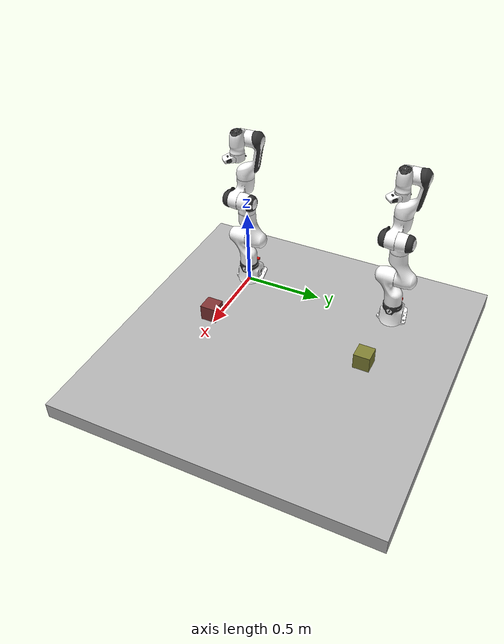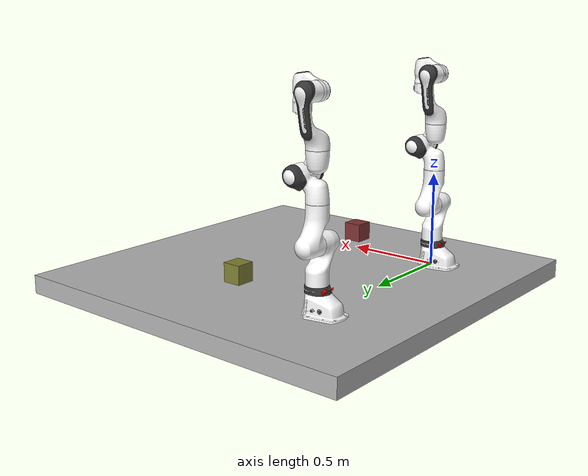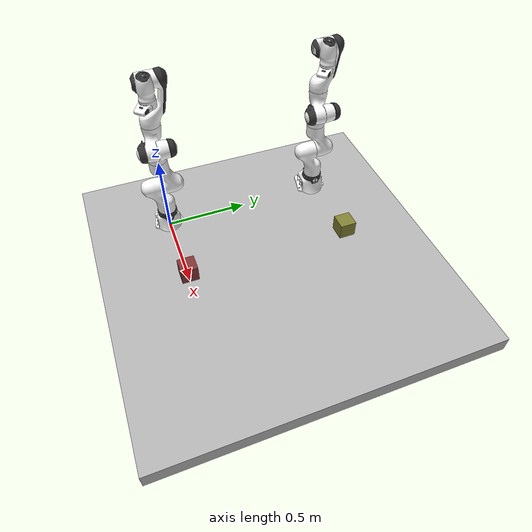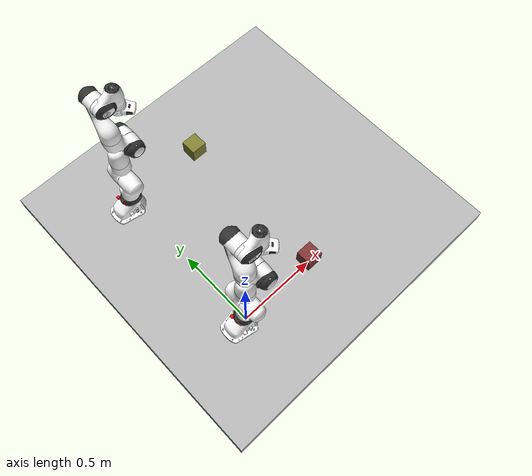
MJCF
<mujoco model="dual_fr3_scene">
  <compiler angle="radian" meshdir="assets"/>

  <option integrator="implicitfast"/>

  <default>
    <default class="fr3">
      <!-- Overwritten in joints 5, 6, and 7. -->
      <joint damping="0.21" armature="0.195" frictionloss="1.137"/>
      <position inheritrange="1"/>
      <default class="visual">
        <geom type="mesh" group="2" contype="0" conaffinity="0"/>
      </default>
      <default class="collision">
        <geom type="mesh" group="3" mass="0" density="0"/>
      </default>
      <site size="0.001" rgba="0.5 0.5 0.5 0.3" group="4"/>
    </default>
  </default>

  <asset>
    <material name="black" rgba=".2 .2 .2 1"/>
    <material name="white" rgba="1 1 1 1"/>
    <material name="red" rgba="1 0.072272 0.039546 1"/>
    <material name="gray" rgba="0.863156 0.863156 0.863157 1"/>
    <material name="button_green" rgba="0.102241 0.571125 0.102242 1"/>
    <material name="button_red" rgba="0.520996 0.008023 0.013702 1"/>
    <material name="button_blue" rgba="0.024157 0.445201 0.737911 1"/>

    <mesh file="link0_0.obj"/>
    <mesh file="link0_1.obj"/>
    <mesh file="link0_2.obj"/>
    <mesh file="link0_3.obj"/>
    <mesh file="link0_4.obj"/>
    <mesh file="link0_5.obj"/>
    <mesh file="link0_6.obj"/>
    <mesh file="link1.obj"/>
    <mesh file="link2.obj"/>
    <mesh file="link3_0.obj"/>
    <mesh file="link3_1.obj"/>
    <mesh file="link4_0.obj"/>
    <mesh file="link4_1.obj"/>
    <mesh file="link5_0.obj"/>
    <mesh file="link5_1.obj"/>
    <mesh file="link5_2.obj"/>
    <mesh file="link6_0.obj"/>
    <mesh file="link6_1.obj"/>
    <mesh file="link6_2.obj"/>
    <mesh file="link6_3.obj"/>
    <mesh file="link6_4.obj"/>
    <mesh file="link6_5.obj"/>
    <mesh file="link6_6.obj"/>
    <mesh file="link6_7.obj"/>
    <mesh file="link7_0.obj"/>
    <mesh file="link7_1.obj"/>
    <mesh file="link7_2.obj"/>
    <mesh file="link7_3.obj"/>

    <mesh name="link0_coll" file="link0.stl"/>
    <mesh name="link1_coll" file="link1.stl"/>
    <mesh name="link2_coll" file="link2.stl"/>
    <mesh name="link3_coll" file="link3.stl"/>
    <mesh name="link4_coll" file="link4.stl"/>
    <mesh name="link5_coll" file="link5.stl"/>
    <mesh name="link6_coll" file="link6.stl"/>
    <mesh name="link7_coll" file="link7.stl"/>
  </asset>

  <worldbody>
    <!-- First FR3 Robot (renamed) -->

    <body name="base_robot1" childclass="fr3">
      <body name="fr3_link0_robot1">
        <geom mesh="link0_0" material="black" class="visual"/>
        <geom mesh="link0_1" material="white" class="visual"/>
        <geom mesh="link0_2" material="white" class="visual"/>
        <geom mesh="link0_3" material="white" class="visual"/>
        <geom mesh="link0_4" material="white" class="visual"/>
        <geom mesh="link0_5" material="red" class="visual"/>
        <geom mesh="link0_6" material="black" class="visual"/>
        <geom name="fr3_link0_collision_robot1" mesh="link0_coll" class="collision"/>
        <body name="fr3_link1_robot1" pos="0 0 0.333">
          <inertial pos="4.128e-07 -0.0181251 -0.0386036" quat="0.998098 -0.0605364 0.00380499 0.0110109" mass="2.92747"
            diaginertia="0.0239286 0.0227246 0.00610634"/>
          <joint name="fr3_joint1_robot1" axis="0 0 1" range="-2.7437 2.7437" actuatorfrcrange="-87 87"/>
          <geom name="fr3_link1_collision_robot1" class="collision" mesh="link1_coll"/>
          <geom material="white" mesh="link1" class="visual"/>
          <body name="fr3_link2_robot1" quat="1 -1 0 0">
            <inertial pos="0.00318289 -0.0743222 0.00881461" quat="0.502599 0.584437 -0.465998 0.434366" mass="2.93554"
              diaginertia="0.0629567 0.0411924 0.0246371"/>
            <joint name="fr3_joint2_robot1" axis="0 0 1" range="-1.7837 1.7837" actuatorfrcrange="-87 87"/>
            <geom material="white" mesh="link2" class="visual"/>
            <geom name="fr3_link2_collision_robot1" class="collision" mesh="link2_coll"/>
            <body name="fr3_link3_robot1" pos="0 -0.316 0" quat="1 1 0 0">
              <inertial pos="0.0407016 -0.00482006 -0.0289731" quat="0.921025 -0.244161 0.155272 0.260745" mass="2.2449"
                diaginertia="0.0267409 0.0189869 0.0171587"/>
              <joint name="fr3_joint3_robot1" axis="0 0 1" range="-2.9007 2.9007" actuatorfrcrange="-87 87"/>
              <geom mesh="link3_0" material="white" class="visual"/>
              <geom mesh="link3_1" material="black" class="visual"/>
              <geom name="fr3_link3_collision_robot1" class="collision" mesh="link3_coll"/>
              <body name="fr3_link4_robot1" pos="0.0825 0 0" quat="1 1 0 0">
                <inertial pos="-0.0459101 0.0630493 -0.00851879" quat="0.438018 0.803311 0.00937812 0.403414"
                  mass="2.6156" diaginertia="0.05139 0.0372717 0.0160047"/>
                <joint name="fr3_joint4_robot1" axis="0 0 1" range="-3.0421 -0.1518" actuatorfrcrange="-87 87"/>
                <geom mesh="link4_0" material="white" class="visual"/>
                <geom mesh="link4_1" material="black" class="visual"/>
                <geom name="fr3_link4_collision_robot1" class="collision" mesh="link4_coll"/>
                <body name="fr3_link5_robot1" pos="-0.0825 0.384 0" quat="1 -1 0 0">
                  <inertial pos="-0.00160396 0.0292536 -0.0972966" quat="0.919031 0.125604 0.0751531 -0.366003"
                    mass="2.32712" diaginertia="0.0579335 0.0449144 0.0130634"/>
                  <joint name="fr3_joint5_robot1" axis="0 0 1" range="-2.8065 2.8065" actuatorfrcrange="-12 12"
                    armature="0.074" frictionloss="0.763"/>
                  <geom mesh="link5_0" material="white" class="visual"/>
                  <geom mesh="link5_1" material="white" class="visual"/>
                  <geom mesh="link5_2" material="black" class="visual"/>
                  <geom name="fr3_link5_collision_robot1" class="collision" mesh="link5_coll"/>
                  <body name="fr3_link6_robot1" quat="1 1 0 0">
                    <inertial pos="0.0597131 -0.0410295 -0.0101693" quat="0.621301 0.552665 0.510011 0.220081"
                      mass="1.81704" diaginertia="0.0175039 0.0161123 0.00193529"/>
                    <joint name="fr3_joint6_robot1" axis="0 0 1" range="0.5445 4.5169" actuatorfrcrange="-12 12"
                      armature="0.074" frictionloss="0.44"/>
                    <geom mesh="link6_0" material="button_green" class="visual"/>
                    <geom mesh="link6_1" material="white" class="visual"/>
                    <geom mesh="link6_2" material="white" class="visual"/>
                    <geom mesh="link6_3" material="gray" class="visual"/>
                    <geom mesh="link6_4" material="button_red" class="visual"/>
                    <geom mesh="link6_5" material="white" class="visual"/>
                    <geom mesh="link6_6" material="black" class="visual"/>
                    <geom mesh="link6_7" material="button_blue" class="visual"/>
                    <geom name="fr3_link6_collision_robot1" class="collision" mesh="link6_coll"/>
                    <body name="fr3_link7_robot1" pos="0.088 0 0" quat="1 1 0 0">
                      <inertial pos="0.00452258 0.00862619 -0.0161633" quat="0.727579 0.0978688 -0.24906 0.63168"
                        mass="0.627143" diaginertia="0.000223836 0.000223642 5.64132e-07"/>
                      <joint name="fr3_joint7_robot1" axis="0 0 1" range="-3.0159 3.0159" actuatorfrcrange="-12 12"
                        armature="0.074" frictionloss="0.248"/>
                      <geom mesh="link7_0" material="black" class="visual"/>
                      <geom mesh="link7_1" material="white" class="visual"/>
                      <geom mesh="link7_2" material="white" class="visual"/>
                      <geom mesh="link7_3" material="black" class="visual"/>
                      <geom name="fr3_link7_collision_robot1" class="collision" mesh="link7_coll"/>
                      <site name="attachment_site_robot1" pos="0 0 0.107"/>
                    </body>
                  </body>
                </body>
              </body>
            </body>
          </body>
        </body>
      </body>
    </body>

    <!-- Second FR3 Robot (translated) -->
    <body name="robot2_base" pos="0 1 0">

    <body name="base_robot2" childclass="fr3">
      <body name="fr3_link0_robot2">
        <geom mesh="link0_0" material="black" class="visual"/>
        <geom mesh="link0_1" material="white" class="visual"/>
        <geom mesh="link0_2" material="white" class="visual"/>
        <geom mesh="link0_3" material="white" class="visual"/>
        <geom mesh="link0_4" material="white" class="visual"/>
        <geom mesh="link0_5" material="red" class="visual"/>
        <geom mesh="link0_6" material="black" class="visual"/>
        <geom name="fr3_link0_collision_robot2" mesh="link0_coll" class="collision"/>
        <body name="fr3_link1_robot2" pos="0 0 0.333">
          <inertial pos="4.128e-07 -0.0181251 -0.0386036" quat="0.998098 -0.0605364 0.00380499 0.0110109" mass="2.92747"
            diaginertia="0.0239286 0.0227246 0.00610634"/>
          <joint name="fr3_joint1_robot2" axis="0 0 1" range="-2.7437 2.7437" actuatorfrcrange="-87 87"/>
          <geom name="fr3_link1_collision_robot2" class="collision" mesh="link1_coll"/>
          <geom material="white" mesh="link1" class="visual"/>
          <body name="fr3_link2_robot2" quat="1 -1 0 0">
            <inertial pos="0.00318289 -0.0743222 0.00881461" quat="0.502599 0.584437 -0.465998 0.434366" mass="2.93554"
              diaginertia="0.0629567 0.0411924 0.0246371"/>
            <joint name="fr3_joint2_robot2" axis="0 0 1" range="-1.7837 1.7837" actuatorfrcrange="-87 87"/>
            <geom material="white" mesh="link2" class="visual"/>
            <geom name="fr3_link2_collision_robot2" class="collision" mesh="link2_coll"/>
            <body name="fr3_link3_robot2" pos="0 -0.316 0" quat="1 1 0 0">
              <inertial pos="0.0407016 -0.00482006 -0.0289731" quat="0.921025 -0.244161 0.155272 0.260745" mass="2.2449"
                diaginertia="0.0267409 0.0189869 0.0171587"/>
              <joint name="fr3_joint3_robot2" axis="0 0 1" range="-2.9007 2.9007" actuatorfrcrange="-87 87"/>
              <geom mesh="link3_0" material="white" class="visual"/>
              <geom mesh="link3_1" material="black" class="visual"/>
              <geom name="fr3_link3_collision_robot2" class="collision" mesh="link3_coll"/>
              <body name="fr3_link4_robot2" pos="0.0825 0 0" quat="1 1 0 0">
                <inertial pos="-0.0459101 0.0630493 -0.00851879" quat="0.438018 0.803311 0.00937812 0.403414"
                  mass="2.6156" diaginertia="0.05139 0.0372717 0.0160047"/>
                <joint name="fr3_joint4_robot2" axis="0 0 1" range="-3.0421 -0.1518" actuatorfrcrange="-87 87"/>
                <geom mesh="link4_0" material="white" class="visual"/>
                <geom mesh="link4_1" material="black" class="visual"/>
                <geom name="fr3_link4_collision_robot2" class="collision" mesh="link4_coll"/>
                <body name="fr3_link5_robot2" pos="-0.0825 0.384 0" quat="1 -1 0 0">
                  <inertial pos="-0.00160396 0.0292536 -0.0972966" quat="0.919031 0.125604 0.0751531 -0.366003"
                    mass="2.32712" diaginertia="0.0579335 0.0449144 0.0130634"/>
                  <joint name="fr3_joint5_robot2" axis="0 0 1" range="-2.8065 2.8065" actuatorfrcrange="-12 12"
                    armature="0.074" frictionloss="0.763"/>
                  <geom mesh="link5_0" material="white" class="visual"/>
                  <geom mesh="link5_1" material="white" class="visual"/>
                  <geom mesh="link5_2" material="black" class="visual"/>
                  <geom name="fr3_link5_collision_robot2" class="collision" mesh="link5_coll"/>
                  <body name="fr3_link6_robot2" quat="1 1 0 0">
                    <inertial pos="0.0597131 -0.0410295 -0.0101693" quat="0.621301 0.552665 0.510011 0.220081"
                      mass="1.81704" diaginertia="0.0175039 0.0161123 0.00193529"/>
                    <joint name="fr3_joint6_robot2" axis="0 0 1" range="0.5445 4.5169" actuatorfrcrange="-12 12"
                      armature="0.074" frictionloss="0.44"/>
                    <geom mesh="link6_0" material="button_green" class="visual"/>
                    <geom mesh="link6_1" material="white" class="visual"/>
                    <geom mesh="link6_2" material="white" class="visual"/>
                    <geom mesh="link6_3" material="gray" class="visual"/>
                    <geom mesh="link6_4" material="button_red" class="visual"/>
                    <geom mesh="link6_5" material="white" class="visual"/>
                    <geom mesh="link6_6" material="black" class="visual"/>
                    <geom mesh="link6_7" material="button_blue" class="visual"/>
                    <geom name="fr3_link6_collision_robot2" class="collision" mesh="link6_coll"/>
                    <body name="fr3_link7_robot2" pos="0.088 0 0" quat="1 1 0 0">
                      <inertial pos="0.00452258 0.00862619 -0.0161633" quat="0.727579 0.0978688 -0.24906 0.63168"
                        mass="0.627143" diaginertia="0.000223836 0.000223642 5.64132e-07"/>
                      <joint name="fr3_joint7_robot2" axis="0 0 1" range="-3.0159 3.0159" actuatorfrcrange="-12 12"
                        armature="0.074" frictionloss="0.248"/>
                      <geom mesh="link7_0" material="black" class="visual"/>
                      <geom mesh="link7_1" material="white" class="visual"/>
                      <geom mesh="link7_2" material="white" class="visual"/>
                      <geom mesh="link7_3" material="black" class="visual"/>
                      <geom name="fr3_link7_collision_robot2" class="collision" mesh="link7_coll"/>
                      <site name="attachment_site_robot2" pos="0 0 0.107"/>
                    </body>
                  </body>
                </body>
              </body>
            </body>
          </body>
        </body>
      </body>
    </body>

    </body>

    <!-- Table-->
    <body name="table" pos="0.5 0.5 -0.05">
        <geom name="table_surface" type="box" size="1 1 0.05" rgba="0.7 0.7 0.7 1" mass="3"/>
    </body>

    <!-- Movable object -->
    <body name="box" pos="0.5 0 0.1">
        <freejoint name="object_joint"/>
        <geom name="object_geom" type="box" size="0.05 0.05 0.05" rgba="0.5 0.2 0.2 1"/>
        <inertial pos="0 0 0" mass="1" diaginertia="0.0001 0.0001 0.0001"/>
    </body>

    <!-- Movable object -->
    <body name="box_2" pos="0.5 1 0.1">
        <freejoint name="object_joint_2"/>
        <geom name="object_geom_2" type="box" size="0.05 0.05 0.05" rgba="0.5 0.5 0.2 1"/>
        <inertial pos="0 0 0" mass="1" diaginertia="0.0001 0.0001 0.0001"/>
    </body>

</worldbody>

  <actuator>
    <!-- First robot actuators -->

    <position class="fr3" name="fr3_joint1_robot1" joint="fr3_joint1_robot1" kp="4500" kv="450"/>
    <position class="fr3" name="fr3_joint2_robot1" joint="fr3_joint2_robot1" kp="4500" kv="450"/>
    <position class="fr3" name="fr3_joint3_robot1" joint="fr3_joint3_robot1" kp="3500" kv="350"/>
    <position class="fr3" name="fr3_joint4_robot1" joint="fr3_joint4_robot1" kp="3500" kv="350"/>
    <position class="fr3" name="fr3_joint5_robot1" joint="fr3_joint5_robot1" kp="2000" kv="200"/>
    <position class="fr3" name="fr3_joint6_robot1" joint="fr3_joint6_robot1" kp="2000" kv="200"/>
    <position class="fr3" name="fr3_joint7_robot1" joint="fr3_joint7_robot1" kp="2000" kv="200"/>

    <!-- Second robot actuators -->

    <position class="fr3" name="fr3_joint1_robot2" joint="fr3_joint1_robot2" kp="4500" kv="450"/>
    <position class="fr3" name="fr3_joint2_robot2" joint="fr3_joint2_robot2" kp="4500" kv="450"/>
    <position class="fr3" name="fr3_joint3_robot2" joint="fr3_joint3_robot2" kp="3500" kv="350"/>
    <position class="fr3" name="fr3_joint4_robot2" joint="fr3_joint4_robot2" kp="3500" kv="350"/>
    <position class="fr3" name="fr3_joint5_robot2" joint="fr3_joint5_robot2" kp="2000" kv="200"/>
    <position class="fr3" name="fr3_joint6_robot2" joint="fr3_joint6_robot2" kp="2000" kv="200"/>
    <position class="fr3" name="fr3_joint7_robot2" joint="fr3_joint7_robot2" kp="2000" kv="200"/>

</actuator>

</mujoco>
